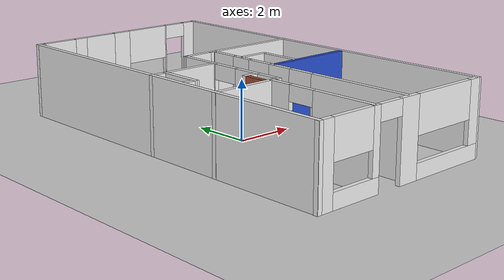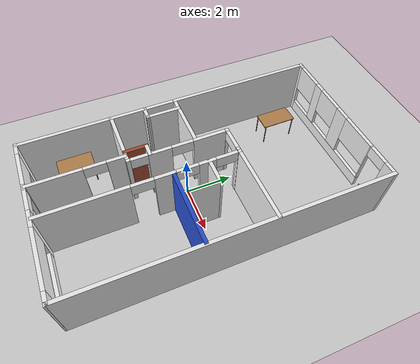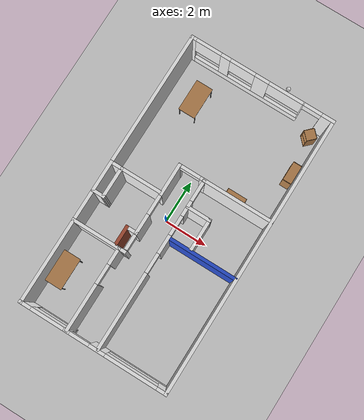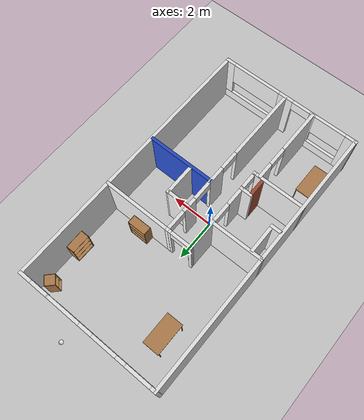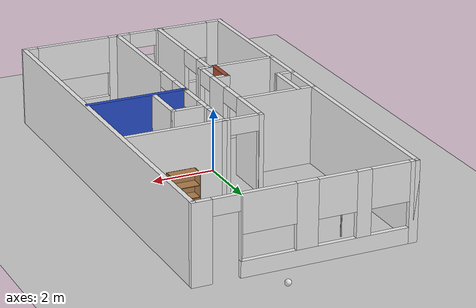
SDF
<sdf version="1.6">
 <world name="default">
  <model name="ground_plane">
   <static>1</static>
   <link name="link">
    <collision name="collision">
     <geometry><plane><normal>0 0 1</normal><size>100 100</size></plane></geometry>
     <surface>
      <contact><collide_bitmask>65535</collide_bitmask></contact>
      <friction><ode><mu>100</mu><mu2>50</mu2></ode></friction>
     </surface>
    </collision>
    <visual name="visual">
     <cast_shadows>0</cast_shadows>
     <geometry><plane><normal>0 0 1</normal><size>100 100</size></plane></geometry>
     <material>
      <script><uri>file://media/materials/scripts/gazebo.material</uri><name>Gazebo/Grey</name></script>
     </material>
    </visual>
   </link>
  </model>
  <light name="sun" type="directional">
   <pose>0 0 10 0 -0 0</pose>
   <diffuse>0.8 0.8 0.8 1</diffuse>
   <specular>0.2 0.2 0.2 1</specular>
   <attenuation>
    <range>1000</range>
    <constant>0.9</constant>
    <linear>0.01</linear>
    <quadratic>0.001</quadratic>
   </attenuation>
   <direction>-0.5 0.1 -0.9</direction>
  </light>
  <gravity>0 0 -9.8</gravity>
  <magnetic_field>6e-06 2.3e-05 -4.2e-05</magnetic_field>
  <atmosphere type="adiabatic"/>
  <physics name="default_physics" default="0" type="ode">
   <max_step_size>0.001</max_step_size>
   <real_time_factor>1</real_time_factor>
   <real_time_update_rate>1000</real_time_update_rate>
  </physics>
  <scene><ambient>0.4 0.4 0.4 1</ambient><background>0.7 0.7 0.7 1</background><shadows>1</shadows></scene>
  <audio><device>default</device></audio>
  <spherical_coordinates>
   <surface_model>EARTH_WGS84</surface_model>
   <latitude_deg>0</latitude_deg>
   <longitude_deg>0</longitude_deg>
   <elevation>0</elevation>
   <heading_deg>0</heading_deg>
  </spherical_coordinates>
  <model name="myapartment">
   <pose>0.398454 0.42378 0 0 -0 0</pose>
   <link name="Wall_0">
    <pose>0.004026 6.44086 0 0 -0 0</pose>
    <visual name="Wall_0_Visual_0">
     <pose>-3.32899 0 1.25 0 -0 0</pose>
     <geometry><box><size>0.289947 0.15 2.5</size></box></geometry>
     <material>
      <script><uri>file://media/materials/scripts/gazebo.material</uri><name>Gazebo/White</name></script>
      <ambient>1 1 1 1</ambient>
     </material>
     <meta><layer>0</layer></meta>
    </visual>
    <collision name="Wall_0_Collision_0">
     <geometry><box><size>0.289947 0.15 2.5</size></box></geometry>
     <pose>-3.32899 0 1.25 0 -0 0</pose>
    </collision>
    <visual name="Wall_0_Visual_1">
     <pose>3.1619 0 1.25 0 -0 0</pose>
     <geometry><box><size>0.624124 0.15 2.5</size></box></geometry>
     <material>
      <script><uri>file://media/materials/scripts/gazebo.material</uri><name>Gazebo/White</name></script>
      <ambient>1 1 1 1</ambient>
     </material>
     <meta><layer>0</layer></meta>
    </visual>
    <collision name="Wall_0_Collision_1">
     <geometry><box><size>0.624124 0.15 2.5</size></box></geometry>
     <pose>3.1619 0 1.25 0 -0 0</pose>
    </collision>
    <visual name="Wall_0_Visual_2">
     <pose>-0.589588 0 0.25 0 -0 0</pose>
     <geometry><box><size>5.18885 0.15 0.5</size></box></geometry>
     <material>
      <script><uri>file://media/materials/scripts/gazebo.material</uri><name>Gazebo/White</name></script>
      <ambient>1 1 1 1</ambient>
     </material>
     <meta><layer>0</layer></meta>
    </visual>
    <collision name="Wall_0_Collision_2">
     <geometry><box><size>5.18885 0.15 0.5</size></box></geometry>
     <pose>-0.589588 0 0.25 0 -0 0</pose>
    </collision>
    <visual name="Wall_0_Visual_3">
     <pose>-1.75147 0 1.5 0 -0 0</pose>
     <geometry><box><size>0.453064 0.15 2</size></box></geometry>
     <material>
      <script><uri>file://media/materials/scripts/gazebo.material</uri><name>Gazebo/White</name></script>
      <ambient>1 1 1 1</ambient>
     </material>
     <meta><layer>0</layer></meta>
    </visual>
    <collision name="Wall_0_Collision_3">
     <geometry><box><size>0.453064 0.15 2</size></box></geometry>
     <pose>-1.75147 0 1.5 0 -0 0</pose>
    </collision>
    <visual name="Wall_0_Visual_4">
     <pose>-0.00315 0 1.5 0 -0 0</pose>
     <geometry><box><size>0.661624 0.15 2</size></box></geometry>
     <material>
      <script><uri>file://media/materials/scripts/gazebo.material</uri><name>Gazebo/White</name></script>
      <ambient>1 1 1 1</ambient>
     </material>
     <meta><layer>0</layer></meta>
    </visual>
    <collision name="Wall_0_Collision_4">
     <geometry><box><size>0.661624 0.15 2</size></box></geometry>
     <pose>-0.00315 0 1.5 0 -0 0</pose>
    </collision>
    <visual name="Wall_0_Visual_5">
     <pose>1.98354 0 1.5 0 -0 0</pose>
     <geometry><box><size>0.042595 0.15 2</size></box></geometry>
     <material>
      <script><uri>file://media/materials/scripts/gazebo.material</uri><name>Gazebo/White</name></script>
      <ambient>1 1 1 1</ambient>
     </material>
     <meta><layer>0</layer></meta>
    </visual>
    <collision name="Wall_0_Collision_5">
     <geometry><box><size>0.042595 0.15 2</size></box></geometry>
     <pose>1.98354 0 1.5 0 -0 0</pose>
    </collision>
    <visual name="Wall_0_Visual_6">
     <pose>-2.58101 0 1.9 0 -0 0</pose>
     <geometry><box><size>1.20601 0.15 1.2</size></box></geometry>
     <material>
      <script><uri>file://media/materials/scripts/gazebo.material</uri><name>Gazebo/White</name></script>
      <ambient>1 1 1 1</ambient>
     </material>
     <meta><layer>0</layer></meta>
    </visual>
    <collision name="Wall_0_Collision_6">
     <geometry><box><size>1.20601 0.15 1.2</size></box></geometry>
     <pose>-2.58101 0 1.9 0 -0 0</pose>
    </collision>
    <visual name="Wall_0_Visual_7">
     <pose>-0.92945 0 1.9 0 -0 0</pose>
     <geometry><box><size>1.19097 0.15 1.2</size></box></geometry>
     <material>
      <script><uri>file://media/materials/scripts/gazebo.material</uri><name>Gazebo/White</name></script>
      <ambient>1 1 1 1</ambient>
     </material>
     <meta><layer>0</layer></meta>
    </visual>
    <collision name="Wall_0_Collision_7">
     <geometry><box><size>1.19097 0.15 1.2</size></box></geometry>
     <pose>-0.92945 0 1.9 0 -0 0</pose>
    </collision>
    <visual name="Wall_0_Visual_8">
     <pose>1.14495 0 1.9 0 -0 0</pose>
     <geometry><box><size>1.63458 0.15 1.2</size></box></geometry>
     <material>
      <script><uri>file://media/materials/scripts/gazebo.material</uri><name>Gazebo/White</name></script>
      <ambient>1 1 1 1</ambient>
     </material>
     <meta><layer>0</layer></meta>
    </visual>
    <collision name="Wall_0_Collision_8">
     <geometry><box><size>1.63458 0.15 1.2</size></box></geometry>
     <pose>1.14495 0 1.9 0 -0 0</pose>
    </collision>
    <visual name="Wall_0_Visual_9">
     <pose>2.42734 0 2.25 0 -0 0</pose>
     <geometry><box><size>0.845 0.15 0.5</size></box></geometry>
     <material>
      <script><uri>file://media/materials/scripts/gazebo.material</uri><name>Gazebo/White</name></script>
      <ambient>1 1 1 1</ambient>
     </material>
     <meta><layer>0</layer></meta>
    </visual>
    <collision name="Wall_0_Collision_9">
     <geometry><box><size>0.845 0.15 0.5</size></box></geometry>
     <pose>2.42734 0 2.25 0 -0 0</pose>
    </collision>
   </link>
   <link name="Wall_11">
    <pose>0.212101 -2.39403 0 0 -0 -1.5708</pose>
    <visual name="Wall_11_Visual_0">
     <pose>-3.96072 0 1.25 0 -0 0</pose>
     <geometry><box><size>0.163567 0.15 2.5</size></box></geometry>
     <material>
      <script><uri>file://media/materials/scripts/gazebo.material</uri><name>Gazebo/White</name></script>
      <ambient>1 1 1 1</ambient>
     </material>
     <meta><layer>0</layer></meta>
    </visual>
    <collision name="Wall_11_Collision_0">
     <geometry><box><size>0.163567 0.15 2.5</size></box></geometry>
     <pose>-3.96072 0 1.25 0 -0 0</pose>
    </collision>
    <visual name="Wall_11_Visual_1">
     <pose>-2.60981 0 1.25 0 -0 0</pose>
     <geometry><box><size>0.718238 0.15 2.5</size></box></geometry>
     <material>
      <script><uri>file://media/materials/scripts/gazebo.material</uri><name>Gazebo/White</name></script>
      <ambient>1 1 1 1</ambient>
     </material>
     <meta><layer>0</layer></meta>
    </visual>
    <collision name="Wall_11_Collision_1">
     <geometry><box><size>0.718238 0.15 2.5</size></box></geometry>
     <pose>-2.60981 0 1.25 0 -0 0</pose>
    </collision>
    <visual name="Wall_11_Visual_2">
     <pose>-0.904498 0 1.25 0 -0 0</pose>
     <geometry><box><size>0.872395 0.15 2.5</size></box></geometry>
     <material>
      <script><uri>file://media/materials/scripts/gazebo.material</uri><name>Gazebo/White</name></script>
      <ambient>1 1 1 1</ambient>
     </material>
     <meta><layer>0</layer></meta>
    </visual>
    <collision name="Wall_11_Collision_2">
     <geometry><box><size>0.872395 0.15 2.5</size></box></geometry>
     <pose>-0.904498 0 1.25 0 -0 0</pose>
    </collision>
    <visual name="Wall_11_Visual_3">
     <pose>2.2421 0 1.25 0 -0 0</pose>
     <geometry><box><size>3.6008 0.15 2.5</size></box></geometry>
     <material>
      <script><uri>file://media/materials/scripts/gazebo.material</uri><name>Gazebo/White</name></script>
      <ambient>1 1 1 1</ambient>
     </material>
     <meta><layer>0</layer></meta>
    </visual>
    <collision name="Wall_11_Collision_3">
     <geometry><box><size>3.6008 0.15 2.5</size></box></geometry>
     <pose>2.2421 0 1.25 0 -0 0</pose>
    </collision>
    <visual name="Wall_11_Visual_4">
     <pose>-3.42393 0 2.25 0 -0 0</pose>
     <geometry><box><size>0.91 0.15 0.5</size></box></geometry>
     <material>
      <script><uri>file://media/materials/scripts/gazebo.material</uri><name>Gazebo/White</name></script>
      <ambient>1 1 1 1</ambient>
     </material>
     <meta><layer>0</layer></meta>
    </visual>
    <collision name="Wall_11_Collision_4">
     <geometry><box><size>0.91 0.15 0.5</size></box></geometry>
     <pose>-3.42393 0 2.25 0 -0 0</pose>
    </collision>
    <visual name="Wall_11_Visual_5">
     <pose>-1.7957 0 2.25 0 -0 0</pose>
     <geometry><box><size>0.91 0.15 0.5</size></box></geometry>
     <material>
      <script><uri>file://media/materials/scripts/gazebo.material</uri><name>Gazebo/White</name></script>
      <ambient>1 1 1 1</ambient>
     </material>
     <meta><layer>0</layer></meta>
    </visual>
    <collision name="Wall_11_Collision_5">
     <geometry><box><size>0.91 0.15 0.5</size></box></geometry>
     <pose>-1.7957 0 2.25 0 -0 0</pose>
    </collision>
    <visual name="Wall_11_Visual_6">
     <pose>-0.0133 0 2.25 0 -0 0</pose>
     <geometry><box><size>0.91 0.15 0.5</size></box></geometry>
     <material>
      <script><uri>file://media/materials/scripts/gazebo.material</uri><name>Gazebo/White</name></script>
      <ambient>1 1 1 1</ambient>
     </material>
     <meta><layer>0</layer></meta>
    </visual>
    <collision name="Wall_11_Collision_6">
     <geometry><box><size>0.91 0.15 0.5</size></box></geometry>
     <pose>-0.0133 0 2.25 0 -0 0</pose>
    </collision>
   </link>
   <link name="Wall_13">
    <collision name="Wall_13_Collision">
     <geometry><box><size>3.25 0.15 2.5</size></box></geometry>
     <pose>0 0 1.25 0 -0 0</pose>
    </collision>
    <visual name="Wall_13_Visual">
     <pose>0 0 1.25 0 -0 0</pose>
     <geometry><box><size>3.25 0.15 2.5</size></box></geometry>
     <material>
      <script><uri>file://media/materials/scripts/gazebo.material</uri><name>Gazebo/Blue</name></script>
      <ambient>1 1 1 1</ambient>
     </material>
     <meta><layer>0</layer></meta>
    </visual>
    <pose>1.79413 -1.1673 0 0 -0 0</pose>
   </link>
   <link name="Wall_15">
    <collision name="Wall_15_Collision">
     <geometry><box><size>2.57057 0.15 2.5</size></box></geometry>
     <pose>0 0 1.25 0 -0 0</pose>
    </collision>
    <visual name="Wall_15_Visual">
     <pose>0 0 1.25 0 -0 0</pose>
     <geometry><box><size>2.57057 0.15 2.5</size></box></geometry>
     <material>
      <script><uri>file://media/materials/scripts/gazebo.material</uri><name>Gazebo/White</name></script>
      <ambient>1 1 1 1</ambient>
     </material>
     <meta><layer>0</layer></meta>
    </visual>
    <pose>-2.18397 -2.58264 0 0 -0 0.001239</pose>
   </link>
   <link name="Wall_16">
    <pose>-0.976474 -0.504642 0 0 -0 1.57224</pose>
    <visual name="Wall_16_Visual_0">
     <pose>-2.06696 0 1.25 0 -0 0</pose>
     <geometry><box><size>0.16959 0.15 2.5</size></box></geometry>
     <material>
      <script><uri>file://media/materials/scripts/gazebo.material</uri><name>Gazebo/White</name></script>
      <ambient>1 1 1 1</ambient>
     </material>
     <meta><layer>0</layer></meta>
    </visual>
    <collision name="Wall_16_Collision_0">
     <geometry><box><size>0.16959 0.15 2.5</size></box></geometry>
     <pose>-2.06696 0 1.25 0 -0 0</pose>
    </collision>
    <visual name="Wall_16_Visual_1">
     <pose>-0.787342 0 1.25 0 -0 0</pose>
     <geometry><box><size>0.969649 0.15 2.5</size></box></geometry>
     <material>
      <script><uri>file://media/materials/scripts/gazebo.material</uri><name>Gazebo/White</name></script>
      <ambient>1 1 1 1</ambient>
     </material>
     <meta><layer>0</layer></meta>
    </visual>
    <collision name="Wall_16_Collision_1">
     <geometry><box><size>0.969649 0.15 2.5</size></box></geometry>
     <pose>-0.787342 0 1.25 0 -0 0</pose>
    </collision>
    <visual name="Wall_16_Visual_2">
     <pose>1.37962 0 1.25 0 -0 0</pose>
     <geometry><box><size>1.54427 0.15 2.5</size></box></geometry>
     <material>
      <script><uri>file://media/materials/scripts/gazebo.material</uri><name>Gazebo/White</name></script>
      <ambient>1 1 1 1</ambient>
     </material>
     <meta><layer>0</layer></meta>
    </visual>
    <collision name="Wall_16_Collision_2">
     <geometry><box><size>1.54427 0.15 2.5</size></box></geometry>
     <pose>1.37962 0 1.25 0 -0 0</pose>
    </collision>
    <visual name="Wall_16_Visual_3">
     <pose>-1.62717 0 2.25 0 -0 0</pose>
     <geometry><box><size>0.71 0.15 0.5</size></box></geometry>
     <material>
      <script><uri>file://media/materials/scripts/gazebo.material</uri><name>Gazebo/White</name></script>
      <ambient>1 1 1 1</ambient>
     </material>
     <meta><layer>0</layer></meta>
    </visual>
    <collision name="Wall_16_Collision_3">
     <geometry><box><size>0.71 0.15 0.5</size></box></geometry>
     <pose>-1.62717 0 2.25 0 -0 0</pose>
    </collision>
    <visual name="Wall_16_Visual_4">
     <pose>0.152483 0 2.25 0 -0 0</pose>
     <geometry><box><size>0.91 0.15 0.5</size></box></geometry>
     <material>
      <script><uri>file://media/materials/scripts/gazebo.material</uri><name>Gazebo/White</name></script>
      <ambient>1 1 1 1</ambient>
     </material>
     <meta><layer>0</layer></meta>
    </visual>
    <collision name="Wall_16_Collision_4">
     <geometry><box><size>0.91 0.15 0.5</size></box></geometry>
     <pose>0.152483 0 2.25 0 -0 0</pose>
    </collision>
   </link>
   <link name="Wall_2">
    <collision name="Wall_2_Collision">
     <geometry><box><size>2.44429 0.15 2.5</size></box></geometry>
     <pose>0 0 1.25 0 -0 0</pose>
    </collision>
    <visual name="Wall_2_Visual">
     <pose>0 0 1.25 0 -0 0</pose>
     <geometry><box><size>2.44429 0.15 2.5</size></box></geometry>
     <material>
      <script><uri>file://media/materials/scripts/gazebo.material</uri><name>Gazebo/White</name></script>
      <ambient>1 1 1 1</ambient>
     </material>
     <meta><layer>0</layer></meta>
    </visual>
    <pose>-2.24753 0.21226 0 0 -0 0.001223</pose>
   </link>
   <link name="Wall_20">
    <collision name="Wall_20_Collision">
     <geometry><box><size>1.16648 0.15 2.5</size></box></geometry>
     <pose>0 0 1.25 0 -0 0</pose>
    </collision>
    <visual name="Wall_20_Visual">
     <pose>0 0 1.25 0 -0 0</pose>
     <geometry><box><size>1.16648 0.15 2.5</size></box></geometry>
     <material>
      <script><uri>file://media/materials/scripts/gazebo.material</uri><name>Gazebo/White</name></script>
      <ambient>1 1 1 1</ambient>
     </material>
     <meta><layer>0</layer></meta>
    </visual>
    <pose>0.733441 0.29699 0 0 -0 -0.003108</pose>
   </link>
   <link name="Wall_21">
    <collision name="Wall_21_Collision">
     <geometry><box><size>1.5 0.15 2.5</size></box></geometry>
     <pose>0 0 1.25 0 -0 0</pose>
    </collision>
    <visual name="Wall_21_Visual">
     <pose>0 0 1.25 0 -0 0</pose>
     <geometry><box><size>1.5 0.15 2.5</size></box></geometry>
     <material>
      <script><uri>file://media/materials/scripts/gazebo.material</uri><name>Gazebo/White</name></script>
      <ambient>1 1 1 1</ambient>
     </material>
     <meta><layer>0</layer></meta>
    </visual>
    <pose>1.24163 -0.379589 0 0 -0 -1.5708</pose>
   </link>
   <link name="Wall_23">
    <collision name="Wall_23_Collision">
     <geometry><box><size>0.627823 0.15 2.5</size></box></geometry>
     <pose>0 0 1.25 0 -0 0</pose>
    </collision>
    <visual name="Wall_23_Visual">
     <pose>0 0 1.25 0 -0 0</pose>
     <geometry><box><size>0.627823 0.15 2.5</size></box></geometry>
     <material>
      <script><uri>file://media/materials/scripts/gazebo.material</uri><name>Gazebo/White</name></script>
      <ambient>1 1 1 1</ambient>
     </material>
     <meta><layer>0</layer></meta>
    </visual>
    <pose>-3.14109 -1.14756 0 0 -0 -0.002313</pose>
   </link>
   <link name="Wall_24">
    <collision name="Wall_24_Collision">
     <geometry><box><size>1.5 0.15 2.5</size></box></geometry>
     <pose>0 0 1.25 0 -0 0</pose>
    </collision>
    <visual name="Wall_24_Visual">
     <pose>0 0 1.25 0 -0 0</pose>
     <geometry><box><size>1.5 0.15 2.5</size></box></geometry>
     <material>
      <script><uri>file://media/materials/scripts/gazebo.material</uri><name>Gazebo/White</name></script>
      <ambient>1 1 1 1</ambient>
     </material>
     <meta><layer>0</layer></meta>
    </visual>
    <pose>-2.90218 -0.473117 0 0 -0 1.5708</pose>
   </link>
   <link name="Wall_26">
    <collision name="Wall_26_Collision">
     <geometry><box><size>1.01076 0.15 2.5</size></box></geometry>
     <pose>0 0 1.25 0 -0 0</pose>
    </collision>
    <visual name="Wall_26_Visual">
     <pose>0 0 1.25 0 -0 0</pose>
     <geometry><box><size>1.01076 0.15 2.5</size></box></geometry>
     <material>
      <script><uri>file://media/materials/scripts/gazebo.material</uri><name>Gazebo/Bricks</name></script>
      <ambient>0.333333 0.666667 1 1</ambient>
     </material>
     <meta><layer>0</layer></meta>
    </visual>
    <pose>-1.42759 -2.12454 0 0 -0 1.5708</pose>
   </link>
   <link name="Wall_27">
    <collision name="Wall_27_Collision">
     <geometry><box><size>0.597111 0.15 2.5</size></box></geometry>
     <pose>0 0 1.25 0 -0 0</pose>
    </collision>
    <visual name="Wall_27_Visual">
     <pose>0 0 1.25 0 -0 0</pose>
     <geometry><box><size>0.597111 0.15 2.5</size></box></geometry>
     <material>
      <script><uri>file://media/materials/scripts/gazebo.material</uri><name>Gazebo/White</name></script>
      <ambient>1 1 1 1</ambient>
     </material>
     <meta><layer>0</layer></meta>
    </visual>
    <pose>-1.20404 -1.69387 0 0 -0 0</pose>
   </link>
   <link name="Wall_30">
    <pose>-1.23247 -4.50024 0 0 -0 1.5708</pose>
    <visual name="Wall_30_Visual_0">
     <pose>-0.859688 0 1.25 0 -0 0</pose>
     <geometry><box><size>2.20454 0.15 2.5</size></box></geometry>
     <material>
      <script><uri>file://media/materials/scripts/gazebo.material</uri><name>Gazebo/White</name></script>
      <ambient>1 1 1 1</ambient>
     </material>
     <meta><layer>0</layer></meta>
    </visual>
    <collision name="Wall_30_Collision_0">
     <geometry><box><size>2.20454 0.15 2.5</size></box></geometry>
     <pose>-0.859688 0 1.25 0 -0 0</pose>
    </collision>
    <visual name="Wall_30_Visual_1">
     <pose>1.55727 0 1.25 0 -0 0</pose>
     <geometry><box><size>0.809377 0.15 2.5</size></box></geometry>
     <material>
      <script><uri>file://media/materials/scripts/gazebo.material</uri><name>Gazebo/White</name></script>
      <ambient>1 1 1 1</ambient>
     </material>
     <meta><layer>0</layer></meta>
    </visual>
    <collision name="Wall_30_Collision_1">
     <geometry><box><size>0.809377 0.15 2.5</size></box></geometry>
     <pose>1.55727 0 1.25 0 -0 0</pose>
    </collision>
    <visual name="Wall_30_Visual_2">
     <pose>0.69758 0 2.25 0 -0 0</pose>
     <geometry><box><size>0.91 0.15 0.5</size></box></geometry>
     <material>
      <script><uri>file://media/materials/scripts/gazebo.material</uri><name>Gazebo/White</name></script>
      <ambient>1 1 1 1</ambient>
     </material>
     <meta><layer>0</layer></meta>
    </visual>
    <collision name="Wall_30_Collision_2">
     <geometry><box><size>0.91 0.15 0.5</size></box></geometry>
     <pose>0.69758 0 2.25 0 -0 0</pose>
    </collision>
   </link>
   <link name="Wall_4">
    <pose>1.20903 1.56986 0 0 -0 -0.000914</pose>
    <visual name="Wall_4_Visual_0">
     <pose>-2.18431 0 1.25 0 -0 0</pose>
     <geometry><box><size>0.158379 0.15 2.5</size></box></geometry>
     <material>
      <script><uri>file://media/materials/scripts/gazebo.material</uri><name>Gazebo/White</name></script>
      <ambient>1 1 1 1</ambient>
     </material>
     <meta><layer>0</layer></meta>
    </visual>
    <collision name="Wall_4_Collision_0">
     <geometry><box><size>0.158379 0.15 2.5</size></box></geometry>
     <pose>-2.18431 0 1.25 0 -0 0</pose>
    </collision>
    <visual name="Wall_4_Visual_1">
     <pose>0.53419 0 1.25 0 -0 0</pose>
     <geometry><box><size>3.45862 0.15 2.5</size></box></geometry>
     <material>
      <script><uri>file://media/materials/scripts/gazebo.material</uri><name>Gazebo/White</name></script>
      <ambient>1 1 1 1</ambient>
     </material>
     <meta><layer>0</layer></meta>
    </visual>
    <collision name="Wall_4_Collision_1">
     <geometry><box><size>3.45862 0.15 2.5</size></box></geometry>
     <pose>0.53419 0 1.25 0 -0 0</pose>
    </collision>
    <visual name="Wall_4_Visual_2">
     <pose>-1.65012 0 2.25 0 -0 0</pose>
     <geometry><box><size>0.91 0.15 0.5</size></box></geometry>
     <material>
      <script><uri>file://media/materials/scripts/gazebo.material</uri><name>Gazebo/White</name></script>
      <ambient>1 1 1 1</ambient>
     </material>
     <meta><layer>0</layer></meta>
    </visual>
    <collision name="Wall_4_Collision_2">
     <geometry><box><size>0.91 0.15 0.5</size></box></geometry>
     <pose>-1.65012 0 2.25 0 -0 0</pose>
    </collision>
   </link>
   <link name="Wall_6">
    <collision name="Wall_6_Collision">
     <geometry><box><size>6.38 0.15 2.5</size></box></geometry>
     <pose>0 0 1.25 0 -0 0</pose>
    </collision>
    <visual name="Wall_6_Visual">
     <pose>0 0 1.25 0 -0 0</pose>
     <geometry><box><size>6.38 0.15 2.5</size></box></geometry>
     <material>
      <script><uri>file://media/materials/scripts/gazebo.material</uri><name>Gazebo/White</name></script>
      <ambient>1 1 1 1</ambient>
     </material>
     <meta><layer>0</layer></meta>
    </visual>
    <pose>-3.39447 3.32586 0 0 -0 -1.5708</pose>
   </link>
   <link name="Wall_7">
    <collision name="Wall_7_Collision">
     <geometry><box><size>6.80168 0.15 2.5</size></box></geometry>
     <pose>0 0 1.25 0 -0 0</pose>
    </collision>
    <visual name="Wall_7_Visual">
     <pose>0 0 1.25 0 -0 0</pose>
     <geometry><box><size>6.80168 0.15 2.5</size></box></geometry>
     <material>
      <script><uri>file://media/materials/scripts/gazebo.material</uri><name>Gazebo/White</name></script>
      <ambient>1 1 1 1</ambient>
     </material>
     <meta><layer>0</layer></meta>
    </visual>
    <pose>-3.39 -3.11487 0 0 -0 -1.56945</pose>
   </link>
   <link name="Wall_8">
    <pose>-9.6e-05 -6.42837 0 0 -0 0.003593</pose>
    <visual name="Wall_8_Visual_0">
     <pose>-3.19294 0 1.25 0 -0 0</pose>
     <geometry><box><size>0.569398 0.15 2.5</size></box></geometry>
     <material>
      <script><uri>file://media/materials/scripts/gazebo.material</uri><name>Gazebo/White</name></script>
      <ambient>1 1 1 1</ambient>
     </material>
     <meta><layer>0</layer></meta>
    </visual>
    <collision name="Wall_8_Collision_0">
     <geometry><box><size>0.569398 0.15 2.5</size></box></geometry>
     <pose>-3.19294 0 1.25 0 -0 0</pose>
    </collision>
    <visual name="Wall_8_Visual_1">
     <pose>0.189812 0 1.25 0 -0 0</pose>
     <geometry><box><size>0.738405 0.15 2.5</size></box></geometry>
     <material>
      <script><uri>file://media/materials/scripts/gazebo.material</uri><name>Gazebo/White</name></script>
      <ambient>1 1 1 1</ambient>
     </material>
     <meta><layer>0</layer></meta>
    </visual>
    <collision name="Wall_8_Collision_1">
     <geometry><box><size>0.738405 0.15 2.5</size></box></geometry>
     <pose>0.189812 0 1.25 0 -0 0</pose>
    </collision>
    <visual name="Wall_8_Visual_2">
     <pose>-1.99882 0 0.25 0 -0 0</pose>
     <geometry><box><size>1.81886 0.15 0.5</size></box></geometry>
     <material>
      <script><uri>file://media/materials/scripts/gazebo.material</uri><name>Gazebo/White</name></script>
      <ambient>1 1 1 1</ambient>
     </material>
     <meta><layer>0</layer></meta>
    </visual>
    <collision name="Wall_8_Collision_2">
     <geometry><box><size>1.81886 0.15 0.5</size></box></geometry>
     <pose>-1.99882 0 0.25 0 -0 0</pose>
    </collision>
    <visual name="Wall_8_Visual_3">
     <pose>2.01833 0 0.25 0 -0 0</pose>
     <geometry><box><size>2.91863 0.15 0.5</size></box></geometry>
     <material>
      <script><uri>file://media/materials/scripts/gazebo.material</uri><name>Gazebo/White</name></script>
      <ambient>1 1 1 1</ambient>
     </material>
     <meta><layer>0</layer></meta>
    </visual>
    <collision name="Wall_8_Collision_3">
     <geometry><box><size>2.91863 0.15 0.5</size></box></geometry>
     <pose>2.01833 0 0.25 0 -0 0</pose>
    </collision>
    <visual name="Wall_8_Visual_4">
     <pose>-1.22615 0 1.5 0 -0 0</pose>
     <geometry><box><size>0.27352 0.15 2</size></box></geometry>
     <material>
      <script><uri>file://media/materials/scripts/gazebo.material</uri><name>Gazebo/White</name></script>
      <ambient>1 1 1 1</ambient>
     </material>
     <meta><layer>0</layer></meta>
    </visual>
    <collision name="Wall_8_Collision_4">
     <geometry><box><size>0.27352 0.15 2</size></box></geometry>
     <pose>-1.22615 0 1.5 0 -0 0</pose>
    </collision>
    <visual name="Wall_8_Visual_5">
     <pose>-1.22615 0 1.5 0 -0 0</pose>
     <geometry><box><size>0.27352 0.15 2</size></box></geometry>
     <material>
      <script><uri>file://media/materials/scripts/gazebo.material</uri><name>Gazebo/White</name></script>
      <ambient>1 1 1 1</ambient>
     </material>
     <meta><layer>0</layer></meta>
    </visual>
    <collision name="Wall_8_Collision_5">
     <geometry><box><size>0.27352 0.15 2</size></box></geometry>
     <pose>-1.22615 0 1.5 0 -0 0</pose>
    </collision>
    <visual name="Wall_8_Visual_6">
     <pose>3.22578 0 1.5 0 -0 0</pose>
     <geometry><box><size>0.503738 0.15 2</size></box></geometry>
     <material>
      <script><uri>file://media/materials/scripts/gazebo.material</uri><name>Gazebo/White</name></script>
      <ambient>1 1 1 1</ambient>
     </material>
     <meta><layer>0</layer></meta>
    </visual>
    <collision name="Wall_8_Collision_6">
     <geometry><box><size>0.503738 0.15 2</size></box></geometry>
     <pose>3.22578 0 1.5 0 -0 0</pose>
    </collision>
    <visual name="Wall_8_Visual_7">
     <pose>-2.13558 0 1.9 0 -0 0</pose>
     <geometry><box><size>1.54534 0.15 1.2</size></box></geometry>
     <material>
      <script><uri>file://media/materials/scripts/gazebo.material</uri><name>Gazebo/White</name></script>
      <ambient>1 1 1 1</ambient>
     </material>
     <meta><layer>0</layer></meta>
    </visual>
    <collision name="Wall_8_Collision_7">
     <geometry><box><size>1.54534 0.15 1.2</size></box></geometry>
     <pose>-2.13558 0 1.9 0 -0 0</pose>
    </collision>
    <visual name="Wall_8_Visual_8">
     <pose>1.76646 0 1.9 0 -0 0</pose>
     <geometry><box><size>2.41489 0.15 1.2</size></box></geometry>
     <material>
      <script><uri>file://media/materials/scripts/gazebo.material</uri><name>Gazebo/White</name></script>
      <ambient>1 1 1 1</ambient>
     </material>
     <meta><layer>0</layer></meta>
    </visual>
    <collision name="Wall_8_Collision_8">
     <geometry><box><size>2.41489 0.15 1.2</size></box></geometry>
     <pose>1.76646 0 1.9 0 -0 0</pose>
    </collision>
    <visual name="Wall_8_Visual_9">
     <pose>-0.634391 0 2.25 0 -0 0</pose>
     <geometry><box><size>0.91 0.15 0.5</size></box></geometry>
     <material>
      <script><uri>file://media/materials/scripts/gazebo.material</uri><name>Gazebo/White</name></script>
      <ambient>1 1 1 1</ambient>
     </material>
     <meta><layer>0</layer></meta>
    </visual>
    <collision name="Wall_8_Collision_9">
     <geometry><box><size>0.91 0.15 0.5</size></box></geometry>
     <pose>-0.634391 0 2.25 0 -0 0</pose>
    </collision>
    <visual name="Wall_8_Visual_10">
     <pose>-0.634391 0 2.25 0 -0 0</pose>
     <geometry><box><size>0.91 0.15 0.5</size></box></geometry>
     <material>
      <script><uri>file://media/materials/scripts/gazebo.material</uri><name>Gazebo/White</name></script>
      <ambient>1 1 1 1</ambient>
     </material>
     <meta><layer>0</layer></meta>
    </visual>
    <collision name="Wall_8_Collision_10">
     <geometry><box><size>0.91 0.15 0.5</size></box></geometry>
     <pose>-0.634391 0 2.25 0 -0 0</pose>
    </collision>
   </link>
   <link name="Wall_9">
    <collision name="Wall_9_Collision">
     <geometry><box><size>13.007 0.15 2.5</size></box></geometry>
     <pose>0 0 1.25 0 -0 0</pose>
    </collision>
    <visual name="Wall_9_Visual">
     <pose>0 0 1.25 0 -0 0</pose>
     <geometry><box><size>13.007 0.15 2.5</size></box></geometry>
     <material>
      <script><uri>file://media/materials/scripts/gazebo.material</uri><name>Gazebo/White</name></script>
      <ambient>1 1 1 1</ambient>
     </material>
     <meta><layer>0</layer></meta>
    </visual>
    <pose>3.40253 0.012358 0 0 -0 1.5708</pose>
   </link>
   <static>1</static>
  </model>
  <model name="bookshelf">
   <static>1</static>
   <link name="link">
    <inertial><mass>1</mass></inertial>
    <collision name="back">
     <pose>0 0.005 0.6 0 -0 0</pose>
     <geometry><box><size>0.9 0.01 1.2</size></box></geometry>
    </collision>
    <visual name="visual1">
     <pose>0 0.005 0.6 0 -0 0</pose>
     <geometry><box><size>0.9 0.01 1.2</size></box></geometry>
     <material>
      <script><uri>file://media/materials/scripts/gazebo.material</uri><name>Gazebo/Wood</name></script>
     </material>
    </visual>
    <collision name="left_side">
     <pose>0.45 -0.195 0.6 0 -0 0</pose>
     <geometry><box><size>0.02 0.4 1.2</size></box></geometry>
    </collision>
    <visual name="visual2">
     <pose>0.45 -0.195 0.6 0 -0 0</pose>
     <geometry><box><size>0.02 0.4 1.2</size></box></geometry>
     <material>
      <script><uri>file://media/materials/scripts/gazebo.material</uri><name>Gazebo/Wood</name></script>
     </material>
    </visual>
    <collision name="right_side">
     <pose>-0.45 -0.195 0.6 0 -0 0</pose>
     <geometry><box><size>0.02 0.4 1.2</size></box></geometry>
    </collision>
    <visual name="visual3">
     <pose>-0.45 -0.195 0.6 0 -0 0</pose>
     <geometry><box><size>0.02 0.4 1.2</size></box></geometry>
     <material>
      <script><uri>file://media/materials/scripts/gazebo.material</uri><name>Gazebo/Wood</name></script>
     </material>
    </visual>
    <collision name="bottom">
     <pose>0 -0.195 0.03 0 -0 0</pose>
     <geometry><box><size>0.88 0.4 0.06</size></box></geometry>
    </collision>
    <visual name="visual4">
     <pose>0 -0.195 0.03 0 -0 0</pose>
     <geometry><box><size>0.88 0.4 0.06</size></box></geometry>
     <material>
      <script><uri>file://media/materials/scripts/gazebo.material</uri><name>Gazebo/Wood</name></script>
     </material>
    </visual>
    <collision name="top">
     <pose>0 -0.195 1.19 0 -0 0</pose>
     <geometry><box><size>0.88 0.4 0.02</size></box></geometry>
    </collision>
    <visual name="visual5">
     <pose>0 -0.195 1.19 0 -0 0</pose>
     <geometry><box><size>0.88 0.4 0.02</size></box></geometry>
     <material>
      <script><uri>file://media/materials/scripts/gazebo.material</uri><name>Gazebo/Wood</name></script>
     </material>
    </visual>
    <collision name="low_shelf">
     <pose>0 -0.195 0.43 0 -0 0</pose>
     <geometry><box><size>0.88 0.4 0.02</size></box></geometry>
    </collision>
    <visual name="visual6">
     <pose>0 -0.195 0.43 0 -0 0</pose>
     <geometry><box><size>0.88 0.4 0.02</size></box></geometry>
     <material>
      <script><uri>file://media/materials/scripts/gazebo.material</uri><name>Gazebo/Wood</name></script>
     </material>
    </visual>
    <collision name="high_shelf">
     <pose>0 -0.195 0.8 0 -0 0</pose>
     <geometry><box><size>0.88 0.4 0.02</size></box></geometry>
    </collision>
    <visual name="visual7">
     <pose>0 -0.195 0.8 0 -0 0</pose>
     <geometry><box><size>0.88 0.4 0.02</size></box></geometry>
     <material>
      <script><uri>file://media/materials/scripts/gazebo.material</uri><name>Gazebo/Wood</name></script>
     </material>
    </visual>
   </link>
   <pose>2.01447 2.07946 0 0 -0 3.14159</pose>
  </model>
  <model name="bookshelf_0">
   <static>1</static>
   <link name="link">
    <inertial><mass>1</mass></inertial>
    <collision name="back">
     <pose>0 0.005 0.6 0 -0 0</pose>
     <geometry><box><size>0.9 0.01 1.2</size></box></geometry>
    </collision>
    <visual name="visual1">
     <pose>0 0.005 0.6 0 -0 0</pose>
     <geometry><box><size>0.9 0.01 1.2</size></box></geometry>
     <material>
      <script><uri>file://media/materials/scripts/gazebo.material</uri><name>Gazebo/Wood</name></script>
     </material>
    </visual>
    <collision name="left_side">
     <pose>0.45 -0.195 0.6 0 -0 0</pose>
     <geometry><box><size>0.02 0.4 1.2</size></box></geometry>
    </collision>
    <visual name="visual2">
     <pose>0.45 -0.195 0.6 0 -0 0</pose>
     <geometry><box><size>0.02 0.4 1.2</size></box></geometry>
     <material>
      <script><uri>file://media/materials/scripts/gazebo.material</uri><name>Gazebo/Wood</name></script>
     </material>
    </visual>
    <collision name="right_side">
     <pose>-0.45 -0.195 0.6 0 -0 0</pose>
     <geometry><box><size>0.02 0.4 1.2</size></box></geometry>
    </collision>
    <visual name="visual3">
     <pose>-0.45 -0.195 0.6 0 -0 0</pose>
     <geometry><box><size>0.02 0.4 1.2</size></box></geometry>
     <material>
      <script><uri>file://media/materials/scripts/gazebo.material</uri><name>Gazebo/Wood</name></script>
     </material>
    </visual>
    <collision name="bottom">
     <pose>0 -0.195 0.03 0 -0 0</pose>
     <geometry><box><size>0.88 0.4 0.06</size></box></geometry>
    </collision>
    <visual name="visual4">
     <pose>0 -0.195 0.03 0 -0 0</pose>
     <geometry><box><size>0.88 0.4 0.06</size></box></geometry>
     <material>
      <script><uri>file://media/materials/scripts/gazebo.material</uri><name>Gazebo/Wood</name></script>
     </material>
    </visual>
    <collision name="top">
     <pose>0 -0.195 1.19 0 -0 0</pose>
     <geometry><box><size>0.88 0.4 0.02</size></box></geometry>
    </collision>
    <visual name="visual5">
     <pose>0 -0.195 1.19 0 -0 0</pose>
     <geometry><box><size>0.88 0.4 0.02</size></box></geometry>
     <material>
      <script><uri>file://media/materials/scripts/gazebo.material</uri><name>Gazebo/Wood</name></script>
     </material>
    </visual>
    <collision name="low_shelf">
     <pose>0 -0.195 0.43 0 -0 0</pose>
     <geometry><box><size>0.88 0.4 0.02</size></box></geometry>
    </collision>
    <visual name="visual6">
     <pose>0 -0.195 0.43 0 -0 0</pose>
     <geometry><box><size>0.88 0.4 0.02</size></box></geometry>
     <material>
      <script><uri>file://media/materials/scripts/gazebo.material</uri><name>Gazebo/Wood</name></script>
     </material>
    </visual>
    <collision name="high_shelf">
     <pose>0 -0.195 0.8 0 -0 0</pose>
     <geometry><box><size>0.88 0.4 0.02</size></box></geometry>
    </collision>
    <visual name="visual7">
     <pose>0 -0.195 0.8 0 -0 0</pose>
     <geometry><box><size>0.88 0.4 0.02</size></box></geometry>
     <material>
      <script><uri>file://media/materials/scripts/gazebo.material</uri><name>Gazebo/Wood</name></script>
     </material>
    </visual>
   </link>
   <pose>3.70324 4.45413 0 0 0 -1.5708</pose>
  </model>
  <model name="cabinet">
   <static>1</static>
   <link name="cabinet_bottom_plate">
    <inertial>
     <pose>0 0 -1 0 -0 0</pose>
     <inertia><ixx>2.05</ixx><ixy>0</ixy><ixz>0</ixz><iyy>2.05</iyy><iyz>0</iyz><izz>2.05</izz></inertia>
     <mass>25</mass>
    </inertial>
    <collision name="cabinet_bottom_plate_geom">
     <pose>0 0 0.01 0 -0 0</pose>
     <geometry><box><size>0.45 0.45 0.02</size></box></geometry>
    </collision>
    <visual name="cabinet_bottom_plate_geom_visual">
     <pose>0 0 0.01 0 -0 0</pose>
     <geometry><box><size>0.45 0.45 0.02</size></box></geometry>
     <material>
      <script><uri>file://media/materials/scripts/gazebo.material</uri><name>Gazebo/Wood</name></script>
     </material>
    </visual>
    <collision name="cabinet_bottom_plate_geom_cabinet_back_plate">
     <pose>0.235 0 0.51 0 -0 0</pose>
     <geometry><box><size>0.02 0.45 1.02</size></box></geometry>
    </collision>
    <visual name="cabinet_bottom_plate_geom_cabinet_back_plate_visual">
     <pose>0.235 0 0.51 0 -0 0</pose>
     <geometry><box><size>0.02 0.45 1.02</size></box></geometry>
     <material>
      <script><uri>file://media/materials/scripts/gazebo.material</uri><name>Gazebo/Wood</name></script>
     </material>
    </visual>
    <collision name="cabinet_bottom_plate_geom_cabinet_left_plate">
     <pose>0 0.235 0.51 0 -0 0</pose>
     <geometry><box><size>0.45 0.02 1.02</size></box></geometry>
    </collision>
    <visual name="cabinet_bottom_plate_geom_cabinet_left_plate_visual">
     <pose>0 0.235 0.51 0 -0 0</pose>
     <geometry><box><size>0.45 0.02 1.02</size></box></geometry>
     <material>
      <script><uri>file://media/materials/scripts/gazebo.material</uri><name>Gazebo/Wood</name></script>
     </material>
    </visual>
    <collision name="cabinet_bottom_plate_geom_cabinet_middle_plate">
     <pose>0 0 0.51 0 -0 0</pose>
     <geometry><box><size>0.45 0.45 0.02</size></box></geometry>
    </collision>
    <visual name="cabinet_bottom_plate_geom_cabinet_middle_plate_visual">
     <pose>0 0 0.51 0 -0 0</pose>
     <geometry><box><size>0.45 0.45 0.02</size></box></geometry>
     <material>
      <script><uri>file://media/materials/scripts/gazebo.material</uri><name>Gazebo/Wood</name></script>
     </material>
    </visual>
    <collision name="cabinet_bottom_plate_geom_cabinet_right_plate">
     <pose>0 -0.235 0.51 0 -0 0</pose>
     <geometry><box><size>0.45 0.02 1.02</size></box></geometry>
    </collision>
    <visual name="cabinet_bottom_plate_geom_cabinet_right_plate_visual">
     <pose>0 -0.235 0.51 0 -0 0</pose>
     <geometry><box><size>0.45 0.02 1.02</size></box></geometry>
     <material>
      <script><uri>file://media/materials/scripts/gazebo.material</uri><name>Gazebo/Wood</name></script>
     </material>
    </visual>
    <collision name="cabinet_bottom_plate_geom_cabinet_top_plate">
     <pose>0 0 1.01 0 -0 0</pose>
     <geometry><box><size>0.45 0.45 0.02</size></box></geometry>
    </collision>
    <visual name="cabinet_bottom_plate_geom_cabinet_top_plate_visual">
     <pose>0 0 1.01 0 -0 0</pose>
     <geometry><box><size>0.45 0.45 0.02</size></box></geometry>
     <material>
      <script><uri>file://media/materials/scripts/gazebo.material</uri><name>Gazebo/Wood</name></script>
     </material>
    </visual>
   </link>
   <pose>3.30638 6.3373 0 0 -0 0.785398</pose>
  </model>
  <model name="table">
   <static>1</static>
   <link name="link">
    <collision name="surface">
     <pose>0 0 1 0 -0 0</pose>
     <geometry><box><size>1.5 0.8 0.03</size></box></geometry>
     <surface><friction><ode><mu>0.6</mu><mu2>0.6</mu2></ode></friction></surface>
    </collision>
    <visual name="visual1">
     <pose>0 0 1 0 -0 0</pose>
     <geometry><box><size>1.5 0.8 0.03</size></box></geometry>
     <material>
      <script><uri>file://media/materials/scripts/gazebo.material</uri><name>Gazebo/Wood</name></script>
     </material>
    </visual>
    <collision name="front_left_leg">
     <pose>0.68 0.38 0.5 0 -0 0</pose>
     <geometry><cylinder><radius>0.02</radius><length>1</length></cylinder></geometry>
    </collision>
    <visual name="front_left_leg">
     <pose>0.68 0.38 0.5 0 -0 0</pose>
     <geometry><cylinder><radius>0.02</radius><length>1</length></cylinder></geometry>
     <material>
      <script><uri>file://media/materials/scripts/gazebo.material</uri><name>Gazebo/Grey</name></script>
     </material>
    </visual>
    <collision name="front_right_leg">
     <pose>0.68 -0.38 0.5 0 -0 0</pose>
     <geometry><cylinder><radius>0.02</radius><length>1</length></cylinder></geometry>
    </collision>
    <visual name="front_right_leg">
     <pose>0.68 -0.38 0.5 0 -0 0</pose>
     <geometry><cylinder><radius>0.02</radius><length>1</length></cylinder></geometry>
     <material>
      <script><uri>file://media/materials/scripts/gazebo.material</uri><name>Gazebo/Grey</name></script>
     </material>
    </visual>
    <collision name="back_right_leg">
     <pose>-0.68 -0.38 0.5 0 -0 0</pose>
     <geometry><cylinder><radius>0.02</radius><length>1</length></cylinder></geometry>
    </collision>
    <visual name="back_right_leg">
     <pose>-0.68 -0.38 0.5 0 -0 0</pose>
     <geometry><cylinder><radius>0.02</radius><length>1</length></cylinder></geometry>
     <material>
      <script><uri>file://media/materials/scripts/gazebo.material</uri><name>Gazebo/Grey</name></script>
     </material>
    </visual>
    <collision name="back_left_leg">
     <pose>-0.68 0.38 0.5 0 -0 0</pose>
     <geometry><cylinder><radius>0.02</radius><length>1</length></cylinder></geometry>
    </collision>
    <visual name="back_left_leg">
     <pose>-0.68 0.38 0.5 0 -0 0</pose>
     <geometry><cylinder><radius>0.02</radius><length>1</length></cylinder></geometry>
     <material>
      <script><uri>file://media/materials/scripts/gazebo.material</uri><name>Gazebo/Grey</name></script>
     </material>
    </visual>
   </link>
   <pose>-1.67744 5.05768 0 0 -0 1.5708</pose>
  </model>
  <model name="table_0">
   <static>1</static>
   <link name="link">
    <collision name="surface">
     <pose>0 0 1 0 -0 0</pose>
     <geometry><box><size>1.5 0.8 0.03</size></box></geometry>
     <surface><friction><ode><mu>0.6</mu><mu2>0.6</mu2></ode></friction></surface>
    </collision>
    <visual name="visual1">
     <pose>0 0 1 0 -0 0</pose>
     <geometry><box><size>1.5 0.8 0.03</size></box></geometry>
     <material>
      <script><uri>file://media/materials/scripts/gazebo.material</uri><name>Gazebo/Wood</name></script>
     </material>
    </visual>
    <collision name="front_left_leg">
     <pose>0.68 0.38 0.5 0 -0 0</pose>
     <geometry><cylinder><radius>0.02</radius><length>1</length></cylinder></geometry>
    </collision>
    <visual name="front_left_leg">
     <pose>0.68 0.38 0.5 0 -0 0</pose>
     <geometry><cylinder><radius>0.02</radius><length>1</length></cylinder></geometry>
     <material>
      <script><uri>file://media/materials/scripts/gazebo.material</uri><name>Gazebo/Grey</name></script>
     </material>
    </visual>
    <collision name="front_right_leg">
     <pose>0.68 -0.38 0.5 0 -0 0</pose>
     <geometry><cylinder><radius>0.02</radius><length>1</length></cylinder></geometry>
    </collision>
    <visual name="front_right_leg">
     <pose>0.68 -0.38 0.5 0 -0 0</pose>
     <geometry><cylinder><radius>0.02</radius><length>1</length></cylinder></geometry>
     <material>
      <script><uri>file://media/materials/scripts/gazebo.material</uri><name>Gazebo/Grey</name></script>
     </material>
    </visual>
    <collision name="back_right_leg">
     <pose>-0.68 -0.38 0.5 0 -0 0</pose>
     <geometry><cylinder><radius>0.02</radius><length>1</length></cylinder></geometry>
    </collision>
    <visual name="back_right_leg">
     <pose>-0.68 -0.38 0.5 0 -0 0</pose>
     <geometry><cylinder><radius>0.02</radius><length>1</length></cylinder></geometry>
     <material>
      <script><uri>file://media/materials/scripts/gazebo.material</uri><name>Gazebo/Grey</name></script>
     </material>
    </visual>
    <collision name="back_left_leg">
     <pose>-0.68 0.38 0.5 0 -0 0</pose>
     <geometry><cylinder><radius>0.02</radius><length>1</length></cylinder></geometry>
    </collision>
    <visual name="back_left_leg">
     <pose>-0.68 0.38 0.5 0 -0 0</pose>
     <geometry><cylinder><radius>0.02</radius><length>1</length></cylinder></geometry>
     <material>
      <script><uri>file://media/materials/scripts/gazebo.material</uri><name>Gazebo/Grey</name></script>
     </material>
    </visual>
   </link>
   <pose>-2.50371 -4.10633 0 0 -0 1.5708</pose>
  </model>
  <model name="my_ball">
   <link name="link">
    <inertial>
     <mass>1</mass>
     <inertia><ixx>0.1</ixx><ixy>0</ixy><ixz>0</ixz><iyy>0.1</iyy><iyz>0</iyz><izz>0.1</izz></inertia>
    </inertial>
    <visual name="visual">
     <geometry><sphere><radius>0.1</radius></sphere></geometry>
     <material>
      <script><name>Gazebo/White</name><uri>file://media/materials/scripts/gazebo.material</uri></script>
      <shader type="vertex"><normal_map>__default__</normal_map></shader>
      <ambient>1 1 1 1</ambient>
      <diffuse>1 1 1 1</diffuse>
      <specular>1 1 1 1</specular>
      <emissive>1 1 1 1</emissive>
     </material>
    </visual>
    <collision name="collision">
     <geometry><sphere><radius>0.1</radius></sphere></geometry>
     <surface>
      <friction>
       <ode><mu>1</mu><mu2>1</mu2><fdir1>0 0 0</fdir1><slip1>0</slip1><slip2>0</slip2></ode>
       <torsional>
        <coefficient>1</coefficient>
        <patch_radius>0</patch_radius>
        <surface_radius>0</surface_radius>
        <use_patch_radius>1</use_patch_radius>
        <ode><slip>0</slip></ode>
       </torsional>
      </friction>
      <bounce><restitution_coefficient>0</restitution_coefficient><threshold>1e+06</threshold></bounce>
      <contact>
       <collide_without_contact>0</collide_without_contact>
       <collide_without_contact_bitmask>1</collide_without_contact_bitmask>
       <collide_bitmask>1</collide_bitmask>
       <ode>
        <soft_cfm>0</soft_cfm>
        <soft_erp>0.2</soft_erp>
        <kp>1e+13</kp>
        <kd>1</kd>
        <max_vel>0.01</max_vel>
        <min_depth>0</min_depth>
       </ode>
       <bullet>
        <split_impulse>1</split_impulse>
        <split_impulse_penetration_threshold>-0.01</split_impulse_penetration_threshold>
        <soft_cfm>0</soft_cfm>
        <soft_erp>0.2</soft_erp>
        <kp>1e+13</kp>
        <kd>1</kd>
       </bullet>
      </contact>
     </surface>
    </collision>
   </link>
   <static>0</static>
   <pose>1.44603 7.86881 0.1 0 -0 0</pose>
  </model>
 </world>
</sdf>
